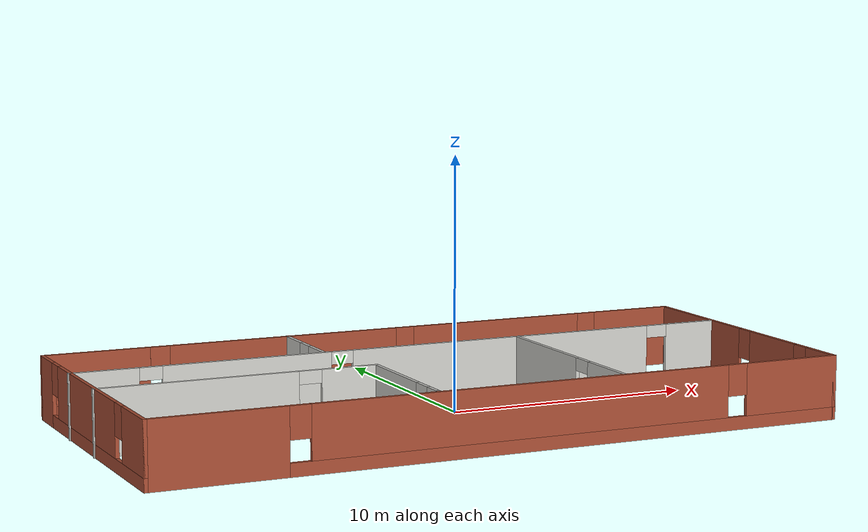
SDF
<?xml version='1.0'?>
<sdf version='1.7'>
  <model name='house'>
    <pose>-1.19393 -0.970979 0 0 -0 0</pose>
    <link name='Wall_0'>
      <pose>-13.6524 -0.015263 0 0 -0 -1.5708</pose>
      <visual name='Wall_0_Visual_0'>
        <pose>-5.57159 0 1.25 0 -0 0</pose>
        <geometry>
          <box>
            <size>1.60682 0.15 2.5</size>
          </box>
        </geometry>
        <material>
          <script>
            <uri>file://media/materials/scripts/gazebo.material</uri>
            <name>Gazebo/Bricks</name>
          </script>
          <ambient>0.760784 0.662745 0.627451 1</ambient>
        </material>
        <meta>
          <layer>0</layer>
        </meta>
      </visual>
      <collision name='Wall_0_Collision_0'>
        <geometry>
          <box>
            <size>1.60682 0.15 2.5</size>
          </box>
        </geometry>
        <pose>-5.57159 0 1.25 0 -0 0</pose>
      </collision>
      <visual name='Wall_0_Visual_1'>
        <pose>0.803408 0 0.25 0 -0 0</pose>
        <geometry>
          <box>
            <size>11.1432 0.15 0.5</size>
          </box>
        </geometry>
        <material>
          <script>
            <uri>file://media/materials/scripts/gazebo.material</uri>
            <name>Gazebo/Bricks</name>
          </script>
          <ambient>0.760784 0.662745 0.627451 1</ambient>
        </material>
        <meta>
          <layer>0</layer>
        </meta>
      </visual>
      <collision name='Wall_0_Collision_1'>
        <geometry>
          <box>
            <size>11.1432 0.15 0.5</size>
          </box>
        </geometry>
        <pose>0.803408 0 0.25 0 -0 0</pose>
      </collision>
      <visual name='Wall_0_Visual_2'>
        <pose>-0.39039 0 1.5 0 -0 0</pose>
        <geometry>
          <box>
            <size>7.15559 0.15 2</size>
          </box>
        </geometry>
        <material>
          <script>
            <uri>file://media/materials/scripts/gazebo.material</uri>
            <name>Gazebo/Bricks</name>
          </script>
          <ambient>0.760784 0.662745 0.627451 1</ambient>
        </material>
        <meta>
          <layer>0</layer>
        </meta>
      </visual>
      <collision name='Wall_0_Collision_2'>
        <geometry>
          <box>
            <size>7.15559 0.15 2</size>
          </box>
        </geometry>
        <pose>-0.39039 0 1.5 0 -0 0</pose>
      </collision>
      <visual name='Wall_0_Visual_3'>
        <pose>5.1812 0 1.5 0 -0 0</pose>
        <geometry>
          <box>
            <size>2.3876 0.15 2</size>
          </box>
        </geometry>
        <material>
          <script>
            <uri>file://media/materials/scripts/gazebo.material</uri>
            <name>Gazebo/Bricks</name>
          </script>
          <ambient>0.760784 0.662745 0.627451 1</ambient>
        </material>
        <meta>
          <layer>0</layer>
        </meta>
      </visual>
      <collision name='Wall_0_Collision_3'>
        <geometry>
          <box>
            <size>2.3876 0.15 2</size>
          </box>
        </geometry>
        <pose>5.1812 0 1.5 0 -0 0</pose>
      </collision>
      <visual name='Wall_0_Visual_4'>
        <pose>-4.36819 0 1.9 0 -0 0</pose>
        <geometry>
          <box>
            <size>0.8 0.15 1.2</size>
          </box>
        </geometry>
        <material>
          <script>
            <uri>file://media/materials/scripts/gazebo.material</uri>
            <name>Gazebo/Bricks</name>
          </script>
          <ambient>0.760784 0.662745 0.627451 1</ambient>
        </material>
        <meta>
          <layer>0</layer>
        </meta>
      </visual>
      <collision name='Wall_0_Collision_4'>
        <geometry>
          <box>
            <size>0.8 0.15 1.2</size>
          </box>
        </geometry>
        <pose>-4.36819 0 1.9 0 -0 0</pose>
      </collision>
      <visual name='Wall_0_Visual_5'>
        <pose>3.5874 0 1.9 0 -0 0</pose>
        <geometry>
          <box>
            <size>0.8 0.15 1.2</size>
          </box>
        </geometry>
        <material>
          <script>
            <uri>file://media/materials/scripts/gazebo.material</uri>
            <name>Gazebo/Bricks</name>
          </script>
          <ambient>0.760784 0.662745 0.627451 1</ambient>
        </material>
        <meta>
          <layer>0</layer>
        </meta>
      </visual>
      <collision name='Wall_0_Collision_5'>
        <geometry>
          <box>
            <size>0.8 0.15 1.2</size>
          </box>
        </geometry>
        <pose>3.5874 0 1.9 0 -0 0</pose>
      </collision>
    </link>
    <link name='Wall_1'>
      <pose>0.022599 -6.31526 0 0 -0 0</pose>
      <visual name='Wall_1_Visual_0'>
        <pose>-11.1466 0 1.25 0 -0 0</pose>
        <geometry>
          <box>
            <size>5.20681 0.15 2.5</size>
          </box>
        </geometry>
        <material>
          <script>
            <uri>file://media/materials/scripts/gazebo.material</uri>
            <name>Gazebo/Bricks</name>
          </script>
          <ambient>0.760784 0.662745 0.627451 1</ambient>
        </material>
        <meta>
          <layer>0</layer>
        </meta>
      </visual>
      <collision name='Wall_1_Collision_0'>
        <geometry>
          <box>
            <size>5.20681 0.15 2.5</size>
          </box>
        </geometry>
        <pose>-11.1466 0 1.25 0 -0 0</pose>
      </collision>
      <visual name='Wall_1_Visual_1'>
        <pose>2.60341 0 0.25 0 -0 0</pose>
        <geometry>
          <box>
            <size>22.2932 0.15 0.5</size>
          </box>
        </geometry>
        <material>
          <script>
            <uri>file://media/materials/scripts/gazebo.material</uri>
            <name>Gazebo/Bricks</name>
          </script>
          <ambient>0.760784 0.662745 0.627451 1</ambient>
        </material>
        <meta>
          <layer>0</layer>
        </meta>
      </visual>
      <collision name='Wall_1_Collision_1'>
        <geometry>
          <box>
            <size>22.2932 0.15 0.5</size>
          </box>
        </geometry>
        <pose>2.60341 0 0.25 0 -0 0</pose>
      </collision>
      <visual name='Wall_1_Visual_2'>
        <pose>0.603307 0 1.5 0 -0 0</pose>
        <geometry>
          <box>
            <size>16.693 0.15 2</size>
          </box>
        </geometry>
        <material>
          <script>
            <uri>file://media/materials/scripts/gazebo.material</uri>
            <name>Gazebo/Bricks</name>
          </script>
          <ambient>0.760784 0.662745 0.627451 1</ambient>
        </material>
        <meta>
          <layer>0</layer>
        </meta>
      </visual>
      <collision name='Wall_1_Collision_2'>
        <geometry>
          <box>
            <size>16.693 0.15 2</size>
          </box>
        </geometry>
        <pose>0.603307 0 1.5 0 -0 0</pose>
      </collision>
      <visual name='Wall_1_Visual_3'>
        <pose>11.7499 0 1.5 0 -0 0</pose>
        <geometry>
          <box>
            <size>4.0002 0.15 2</size>
          </box>
        </geometry>
        <material>
          <script>
            <uri>file://media/materials/scripts/gazebo.material</uri>
            <name>Gazebo/Bricks</name>
          </script>
          <ambient>0.760784 0.662745 0.627451 1</ambient>
        </material>
        <meta>
          <layer>0</layer>
        </meta>
      </visual>
      <collision name='Wall_1_Collision_3'>
        <geometry>
          <box>
            <size>4.0002 0.15 2</size>
          </box>
        </geometry>
        <pose>11.7499 0 1.5 0 -0 0</pose>
      </collision>
      <visual name='Wall_1_Visual_4'>
        <pose>-8.14319 0 1.9 0 -0 0</pose>
        <geometry>
          <box>
            <size>0.8 0.15 1.2</size>
          </box>
        </geometry>
        <material>
          <script>
            <uri>file://media/materials/scripts/gazebo.material</uri>
            <name>Gazebo/Bricks</name>
          </script>
          <ambient>0.760784 0.662745 0.627451 1</ambient>
        </material>
        <meta>
          <layer>0</layer>
        </meta>
      </visual>
      <collision name='Wall_1_Collision_4'>
        <geometry>
          <box>
            <size>0.8 0.15 1.2</size>
          </box>
        </geometry>
        <pose>-8.14319 0 1.9 0 -0 0</pose>
      </collision>
      <visual name='Wall_1_Visual_5'>
        <pose>9.3498 0 1.9 0 -0 0</pose>
        <geometry>
          <box>
            <size>0.8 0.15 1.2</size>
          </box>
        </geometry>
        <material>
          <script>
            <uri>file://media/materials/scripts/gazebo.material</uri>
            <name>Gazebo/Bricks</name>
          </script>
          <ambient>0.760784 0.662745 0.627451 1</ambient>
        </material>
        <meta>
          <layer>0</layer>
        </meta>
      </visual>
      <collision name='Wall_1_Collision_5'>
        <geometry>
          <box>
            <size>0.8 0.15 1.2</size>
          </box>
        </geometry>
        <pose>9.3498 0 1.9 0 -0 0</pose>
      </collision>
    </link>
    <link name='Wall_10'>
      <pose>-2.8476 -3.39165 0 0 -0 -1.5708</pose>
      <visual name='Wall_10_Visual_0'>
        <pose>-0.843155 0 1.25 0 -0 0</pose>
        <geometry>
          <box>
            <size>3.81369 0.15 2.5</size>
          </box>
        </geometry>
        <material>
          <script>
            <uri>file://media/materials/scripts/gazebo.material</uri>
            <name>Gazebo/CeilingTiled</name>
          </script>
          <ambient>1 1 1 1</ambient>
        </material>
        <meta>
          <layer>0</layer>
        </meta>
      </visual>
      <collision name='Wall_10_Collision_0'>
        <geometry>
          <box>
            <size>3.81369 0.15 2.5</size>
          </box>
        </geometry>
        <pose>-0.843155 0 1.25 0 -0 0</pose>
      </collision>
      <visual name='Wall_10_Visual_1'>
        <pose>2.35684 0 1.25 0 -0 0</pose>
        <geometry>
          <box>
            <size>0.786311 0.15 2.5</size>
          </box>
        </geometry>
        <material>
          <script>
            <uri>file://media/materials/scripts/gazebo.material</uri>
            <name>Gazebo/CeilingTiled</name>
          </script>
          <ambient>1 1 1 1</ambient>
        </material>
        <meta>
          <layer>0</layer>
        </meta>
      </visual>
      <collision name='Wall_10_Collision_1'>
        <geometry>
          <box>
            <size>0.786311 0.15 2.5</size>
          </box>
        </geometry>
        <pose>2.35684 0 1.25 0 -0 0</pose>
      </collision>
      <visual name='Wall_10_Visual_2'>
        <pose>1.51369 0 2.25 0 -0 0</pose>
        <geometry>
          <box>
            <size>0.9 0.15 0.5</size>
          </box>
        </geometry>
        <material>
          <script>
            <uri>file://media/materials/scripts/gazebo.material</uri>
            <name>Gazebo/CeilingTiled</name>
          </script>
          <ambient>1 1 1 1</ambient>
        </material>
        <meta>
          <layer>0</layer>
        </meta>
      </visual>
      <collision name='Wall_10_Collision_2'>
        <geometry>
          <box>
            <size>0.9 0.15 0.5</size>
          </box>
        </geometry>
        <pose>1.51369 0 2.25 0 -0 0</pose>
      </collision>
    </link>
    <link name='Wall_12'>
      <collision name='Wall_12_Collision'>
        <geometry>
          <box>
            <size>0.25 0.15 2.5</size>
          </box>
        </geometry>
        <pose>0 0 1.25 0 -0 0</pose>
      </collision>
      <visual name='Wall_12_Visual'>
        <pose>0 0 1.25 0 -0 0</pose>
        <geometry>
          <box>
            <size>0.25 0.15 2.5</size>
          </box>
        </geometry>
        <material>
          <script>
            <uri>file://media/materials/scripts/gazebo.material</uri>
            <name>Gazebo/Grey</name>
          </script>
          <ambient>1 1 1 1</ambient>
        </material>
        <meta>
          <layer>0</layer>
        </meta>
      </visual>
      <pose>-2.8476 -6.11665 0 0 -0 -1.5708</pose>
    </link>
    <link name='Wall_15'>
      <pose>4.61909 -1.88237 0 0 -0 -1.5708</pose>
      <visual name='Wall_15_Visual_0'>
        <pose>-1.80823 0 1.25 0 -0 0</pose>
        <geometry>
          <box>
            <size>5.13354 0.15 2.5</size>
          </box>
        </geometry>
        <material>
          <script>
            <uri>file://media/materials/scripts/gazebo.material</uri>
            <name>Gazebo/CeilingTiled</name>
          </script>
          <ambient>1 1 1 1</ambient>
        </material>
        <meta>
          <layer>0</layer>
        </meta>
      </visual>
      <collision name='Wall_15_Collision_0'>
        <geometry>
          <box>
            <size>5.13354 0.15 2.5</size>
          </box>
        </geometry>
        <pose>-1.80823 0 1.25 0 -0 0</pose>
      </collision>
      <visual name='Wall_15_Visual_1'>
        <pose>3.01677 0 1.25 0 -0 0</pose>
        <geometry>
          <box>
            <size>2.71646 0.15 2.5</size>
          </box>
        </geometry>
        <material>
          <script>
            <uri>file://media/materials/scripts/gazebo.material</uri>
            <name>Gazebo/CeilingTiled</name>
          </script>
          <ambient>1 1 1 1</ambient>
        </material>
        <meta>
          <layer>0</layer>
        </meta>
      </visual>
      <collision name='Wall_15_Collision_1'>
        <geometry>
          <box>
            <size>2.71646 0.15 2.5</size>
          </box>
        </geometry>
        <pose>3.01677 0 1.25 0 -0 0</pose>
      </collision>
      <visual name='Wall_15_Visual_2'>
        <pose>1.20854 0 2.25 0 -0 0</pose>
        <geometry>
          <box>
            <size>0.9 0.15 0.5</size>
          </box>
        </geometry>
        <material>
          <script>
            <uri>file://media/materials/scripts/gazebo.material</uri>
            <name>Gazebo/CeilingTiled</name>
          </script>
          <ambient>1 1 1 1</ambient>
        </material>
        <meta>
          <layer>0</layer>
        </meta>
      </visual>
      <collision name='Wall_15_Collision_2'>
        <geometry>
          <box>
            <size>0.9 0.15 0.5</size>
          </box>
        </geometry>
        <pose>1.20854 0 2.25 0 -0 0</pose>
      </collision>
    </link>
    <link name='Wall_2'>
      <pose>13.6976 -0.015263 0 0 -0 1.5708</pose>
      <visual name='Wall_2_Visual_0'>
        <pose>-5.43708 0 1.25 0 -0 0</pose>
        <geometry>
          <box>
            <size>1.87583 0.15 2.5</size>
          </box>
        </geometry>
        <material>
          <script>
            <uri>file://media/materials/scripts/gazebo.material</uri>
            <name>Gazebo/Bricks</name>
          </script>
          <ambient>1 1 1 1</ambient>
        </material>
        <meta>
          <layer>0</layer>
        </meta>
      </visual>
      <collision name='Wall_2_Collision_0'>
        <geometry>
          <box>
            <size>1.87583 0.15 2.5</size>
          </box>
        </geometry>
        <pose>-5.43708 0 1.25 0 -0 0</pose>
      </collision>
      <visual name='Wall_2_Visual_1'>
        <pose>0.937916 0 0.25 0 -0 0</pose>
        <geometry>
          <box>
            <size>10.8742 0.15 0.5</size>
          </box>
        </geometry>
        <material>
          <script>
            <uri>file://media/materials/scripts/gazebo.material</uri>
            <name>Gazebo/Bricks</name>
          </script>
          <ambient>1 1 1 1</ambient>
        </material>
        <meta>
          <layer>0</layer>
        </meta>
      </visual>
      <collision name='Wall_2_Collision_1'>
        <geometry>
          <box>
            <size>10.8742 0.15 0.5</size>
          </box>
        </geometry>
        <pose>0.937916 0 0.25 0 -0 0</pose>
      </collision>
      <visual name='Wall_2_Visual_2'>
        <pose>-2.1219 0 1.5 0 -0 0</pose>
        <geometry>
          <box>
            <size>3.15453 0.15 2</size>
          </box>
        </geometry>
        <material>
          <script>
            <uri>file://media/materials/scripts/gazebo.material</uri>
            <name>Gazebo/Bricks</name>
          </script>
          <ambient>1 1 1 1</ambient>
        </material>
        <meta>
          <layer>0</layer>
        </meta>
      </visual>
      <collision name='Wall_2_Collision_2'>
        <geometry>
          <box>
            <size>3.15453 0.15 2</size>
          </box>
        </geometry>
        <pose>-2.1219 0 1.5 0 -0 0</pose>
      </collision>
      <visual name='Wall_2_Visual_3'>
        <pose>3.31518 0 1.5 0 -0 0</pose>
        <geometry>
          <box>
            <size>6.11963 0.15 2</size>
          </box>
        </geometry>
        <material>
          <script>
            <uri>file://media/materials/scripts/gazebo.material</uri>
            <name>Gazebo/Bricks</name>
          </script>
          <ambient>1 1 1 1</ambient>
        </material>
        <meta>
          <layer>0</layer>
        </meta>
      </visual>
      <collision name='Wall_2_Collision_3'>
        <geometry>
          <box>
            <size>6.11963 0.15 2</size>
          </box>
        </geometry>
        <pose>3.31518 0 1.5 0 -0 0</pose>
      </collision>
      <visual name='Wall_2_Visual_4'>
        <pose>-4.09917 0 1.9 0 -0 0</pose>
        <geometry>
          <box>
            <size>0.8 0.15 1.2</size>
          </box>
        </geometry>
        <material>
          <script>
            <uri>file://media/materials/scripts/gazebo.material</uri>
            <name>Gazebo/Bricks</name>
          </script>
          <ambient>1 1 1 1</ambient>
        </material>
        <meta>
          <layer>0</layer>
        </meta>
      </visual>
      <collision name='Wall_2_Collision_4'>
        <geometry>
          <box>
            <size>0.8 0.15 1.2</size>
          </box>
        </geometry>
        <pose>-4.09917 0 1.9 0 -0 0</pose>
      </collision>
      <visual name='Wall_2_Visual_5'>
        <pose>-0.144635 0 1.9 0 -0 0</pose>
        <geometry>
          <box>
            <size>0.8 0.15 1.2</size>
          </box>
        </geometry>
        <material>
          <script>
            <uri>file://media/materials/scripts/gazebo.material</uri>
            <name>Gazebo/Bricks</name>
          </script>
          <ambient>1 1 1 1</ambient>
        </material>
        <meta>
          <layer>0</layer>
        </meta>
      </visual>
      <collision name='Wall_2_Collision_5'>
        <geometry>
          <box>
            <size>0.8 0.15 1.2</size>
          </box>
        </geometry>
        <pose>-0.144635 0 1.9 0 -0 0</pose>
      </collision>
    </link>
    <link name='Wall_3'>
      <pose>0.022599 6.28474 0 0 -0 3.14159</pose>
      <visual name='Wall_3_Visual_0'>
        <pose>-11.9593 0 1.25 0 -0 0</pose>
        <geometry>
          <box>
            <size>3.58148 0.15 2.5</size>
          </box>
        </geometry>
        <material>
          <script>
            <uri>file://media/materials/scripts/gazebo.material</uri>
            <name>Gazebo/Bricks</name>
          </script>
          <ambient>1 1 1 1</ambient>
        </material>
        <meta>
          <layer>0</layer>
        </meta>
      </visual>
      <collision name='Wall_3_Collision_0'>
        <geometry>
          <box>
            <size>3.58148 0.15 2.5</size>
          </box>
        </geometry>
        <pose>-11.9593 0 1.25 0 -0 0</pose>
      </collision>
      <visual name='Wall_3_Visual_1'>
        <pose>1.79074 0 0.25 0 -0 0</pose>
        <geometry>
          <box>
            <size>23.9185 0.15 0.5</size>
          </box>
        </geometry>
        <material>
          <script>
            <uri>file://media/materials/scripts/gazebo.material</uri>
            <name>Gazebo/Bricks</name>
          </script>
          <ambient>1 1 1 1</ambient>
        </material>
        <meta>
          <layer>0</layer>
        </meta>
      </visual>
      <collision name='Wall_3_Collision_1'>
        <geometry>
          <box>
            <size>23.9185 0.15 0.5</size>
          </box>
        </geometry>
        <pose>1.79074 0 0.25 0 -0 0</pose>
      </collision>
      <visual name='Wall_3_Visual_2'>
        <pose>-5.58137 0 1.5 0 -0 0</pose>
        <geometry>
          <box>
            <size>7.5743 0.15 2</size>
          </box>
        </geometry>
        <material>
          <script>
            <uri>file://media/materials/scripts/gazebo.material</uri>
            <name>Gazebo/Bricks</name>
          </script>
          <ambient>1 1 1 1</ambient>
        </material>
        <meta>
          <layer>0</layer>
        </meta>
      </visual>
      <collision name='Wall_3_Collision_2'>
        <geometry>
          <box>
            <size>7.5743 0.15 2</size>
          </box>
        </geometry>
        <pose>-5.58137 0 1.5 0 -0 0</pose>
      </collision>
      <visual name='Wall_3_Visual_3'>
        <pose>3.81646 0 1.5 0 -0 0</pose>
        <geometry>
          <box>
            <size>9.62136 0.15 2</size>
          </box>
        </geometry>
        <material>
          <script>
            <uri>file://media/materials/scripts/gazebo.material</uri>
            <name>Gazebo/Bricks</name>
          </script>
          <ambient>1 1 1 1</ambient>
        </material>
        <meta>
          <layer>0</layer>
        </meta>
      </visual>
      <collision name='Wall_3_Collision_3'>
        <geometry>
          <box>
            <size>9.62136 0.15 2</size>
          </box>
        </geometry>
        <pose>3.81646 0 1.5 0 -0 0</pose>
      </collision>
      <visual name='Wall_3_Visual_4'>
        <pose>11.5886 0 1.5 0 -0 0</pose>
        <geometry>
          <box>
            <size>4.32286 0.15 2</size>
          </box>
        </geometry>
        <material>
          <script>
            <uri>file://media/materials/scripts/gazebo.material</uri>
            <name>Gazebo/Bricks</name>
          </script>
          <ambient>1 1 1 1</ambient>
        </material>
        <meta>
          <layer>0</layer>
        </meta>
      </visual>
      <collision name='Wall_3_Collision_4'>
        <geometry>
          <box>
            <size>4.32286 0.15 2</size>
          </box>
        </geometry>
        <pose>11.5886 0 1.5 0 -0 0</pose>
      </collision>
      <visual name='Wall_3_Visual_5'>
        <pose>-9.76852 0 1.9 0 -0 0</pose>
        <geometry>
          <box>
            <size>0.8 0.15 1.2</size>
          </box>
        </geometry>
        <material>
          <script>
            <uri>file://media/materials/scripts/gazebo.material</uri>
            <name>Gazebo/Bricks</name>
          </script>
          <ambient>1 1 1 1</ambient>
        </material>
        <meta>
          <layer>0</layer>
        </meta>
      </visual>
      <collision name='Wall_3_Collision_5'>
        <geometry>
          <box>
            <size>0.8 0.15 1.2</size>
          </box>
        </geometry>
        <pose>-9.76852 0 1.9 0 -0 0</pose>
      </collision>
      <visual name='Wall_3_Visual_6'>
        <pose>-1.39421 0 1.9 0 -0 0</pose>
        <geometry>
          <box>
            <size>0.8 0.15 1.2</size>
          </box>
        </geometry>
        <material>
          <script>
            <uri>file://media/materials/scripts/gazebo.material</uri>
            <name>Gazebo/Bricks</name>
          </script>
          <ambient>1 1 1 1</ambient>
        </material>
        <meta>
          <layer>0</layer>
        </meta>
      </visual>
      <collision name='Wall_3_Collision_6'>
        <geometry>
          <box>
            <size>0.8 0.15 1.2</size>
          </box>
        </geometry>
        <pose>-1.39421 0 1.9 0 -0 0</pose>
      </collision>
      <visual name='Wall_3_Visual_7'>
        <pose>9.02714 0 1.9 0 -0 0</pose>
        <geometry>
          <box>
            <size>0.8 0.15 1.2</size>
          </box>
        </geometry>
        <material>
          <script>
            <uri>file://media/materials/scripts/gazebo.material</uri>
            <name>Gazebo/Bricks</name>
          </script>
          <ambient>1 1 1 1</ambient>
        </material>
        <meta>
          <layer>0</layer>
        </meta>
      </visual>
      <collision name='Wall_3_Collision_7'>
        <geometry>
          <box>
            <size>0.8 0.15 1.2</size>
          </box>
        </geometry>
        <pose>9.02714 0 1.9 0 -0 0</pose>
      </collision>
    </link>
    <link name='Wall_5'>
      <pose>-0.022438 2.41034 0 0 -0 0</pose>
      <visual name='Wall_5_Visual_0'>
        <pose>-12.4031 0 1.25 0 -0 0</pose>
        <geometry>
          <box>
            <size>2.6938 0.15 2.5</size>
          </box>
        </geometry>
        <material>
          <script>
            <uri>file://media/materials/scripts/gazebo.material</uri>
            <name>Gazebo/CeilingTiled</name>
          </script>
          <ambient>1 1 1 1</ambient>
        </material>
        <meta>
          <layer>0</layer>
        </meta>
      </visual>
      <collision name='Wall_5_Collision_0'>
        <geometry>
          <box>
            <size>2.6938 0.15 2.5</size>
          </box>
        </geometry>
        <pose>-12.4031 0 1.25 0 -0 0</pose>
      </collision>
      <visual name='Wall_5_Visual_1'>
        <pose>-6.77171 0 1.25 0 -0 0</pose>
        <geometry>
          <box>
            <size>6.76897 0.15 2.5</size>
          </box>
        </geometry>
        <material>
          <script>
            <uri>file://media/materials/scripts/gazebo.material</uri>
            <name>Gazebo/CeilingTiled</name>
          </script>
          <ambient>1 1 1 1</ambient>
        </material>
        <meta>
          <layer>0</layer>
        </meta>
      </visual>
      <collision name='Wall_5_Collision_1'>
        <geometry>
          <box>
            <size>6.76897 0.15 2.5</size>
          </box>
        </geometry>
        <pose>-6.77171 0 1.25 0 -0 0</pose>
      </collision>
      <visual name='Wall_5_Visual_2'>
        <pose>4.02817 0 1.25 0 -0 0</pose>
        <geometry>
          <box>
            <size>13.0308 0.15 2.5</size>
          </box>
        </geometry>
        <material>
          <script>
            <uri>file://media/materials/scripts/gazebo.material</uri>
            <name>Gazebo/CeilingTiled</name>
          </script>
          <ambient>1 1 1 1</ambient>
        </material>
        <meta>
          <layer>0</layer>
        </meta>
      </visual>
      <collision name='Wall_5_Collision_2'>
        <geometry>
          <box>
            <size>13.0308 0.15 2.5</size>
          </box>
        </geometry>
        <pose>4.02817 0 1.25 0 -0 0</pose>
      </collision>
      <visual name='Wall_5_Visual_3'>
        <pose>12.5968 0 1.25 0 -0 0</pose>
        <geometry>
          <box>
            <size>2.30644 0.15 2.5</size>
          </box>
        </geometry>
        <material>
          <script>
            <uri>file://media/materials/scripts/gazebo.material</uri>
            <name>Gazebo/CeilingTiled</name>
          </script>
          <ambient>1 1 1 1</ambient>
        </material>
        <meta>
          <layer>0</layer>
        </meta>
      </visual>
      <collision name='Wall_5_Collision_3'>
        <geometry>
          <box>
            <size>2.30644 0.15 2.5</size>
          </box>
        </geometry>
        <pose>12.5968 0 1.25 0 -0 0</pose>
      </collision>
      <visual name='Wall_5_Visual_4'>
        <pose>-10.6062 0 2.25 0 -0 0</pose>
        <geometry>
          <box>
            <size>0.9 0.15 0.5</size>
          </box>
        </geometry>
        <material>
          <script>
            <uri>file://media/materials/scripts/gazebo.material</uri>
            <name>Gazebo/CeilingTiled</name>
          </script>
          <ambient>1 1 1 1</ambient>
        </material>
        <meta>
          <layer>0</layer>
        </meta>
      </visual>
      <collision name='Wall_5_Collision_4'>
        <geometry>
          <box>
            <size>0.9 0.15 0.5</size>
          </box>
        </geometry>
        <pose>-10.6062 0 2.25 0 -0 0</pose>
      </collision>
      <visual name='Wall_5_Visual_5'>
        <pose>-2.93723 0 2.25 0 -0 0</pose>
        <geometry>
          <box>
            <size>0.9 0.15 0.5</size>
          </box>
        </geometry>
        <material>
          <script>
            <uri>file://media/materials/scripts/gazebo.material</uri>
            <name>Gazebo/CeilingTiled</name>
          </script>
          <ambient>1 1 1 1</ambient>
        </material>
        <meta>
          <layer>0</layer>
        </meta>
      </visual>
      <collision name='Wall_5_Collision_5'>
        <geometry>
          <box>
            <size>0.9 0.15 0.5</size>
          </box>
        </geometry>
        <pose>-2.93723 0 2.25 0 -0 0</pose>
      </collision>
      <visual name='Wall_5_Visual_6'>
        <pose>10.9936 0 2.25 0 -0 0</pose>
        <geometry>
          <box>
            <size>0.9 0.15 0.5</size>
          </box>
        </geometry>
        <material>
          <script>
            <uri>file://media/materials/scripts/gazebo.material</uri>
            <name>Gazebo/CeilingTiled</name>
          </script>
          <ambient>1 1 1 1</ambient>
        </material>
        <meta>
          <layer>0</layer>
        </meta>
      </visual>
      <collision name='Wall_5_Collision_6'>
        <geometry>
          <box>
            <size>0.9 0.15 0.5</size>
          </box>
        </geometry>
        <pose>10.9936 0 2.25 0 -0 0</pose>
      </collision>
    </link>
    <link name='Wall_7'>
      <pose>-3.66474 4.39026 0 0 -0 -1.5708</pose>
      <visual name='Wall_7_Visual_0'>
        <pose>-1.20498 0 1.25 0 -0 0</pose>
        <geometry>
          <box>
            <size>1.59004 0.15 2.5</size>
          </box>
        </geometry>
        <material>
          <script>
            <uri>file://media/materials/scripts/gazebo.material</uri>
            <name>Gazebo/CeilingTiled</name>
          </script>
          <ambient>1 1 1 1</ambient>
        </material>
        <meta>
          <layer>0</layer>
        </meta>
      </visual>
      <collision name='Wall_7_Collision_0'>
        <geometry>
          <box>
            <size>1.59004 0.15 2.5</size>
          </box>
        </geometry>
        <pose>-1.20498 0 1.25 0 -0 0</pose>
      </collision>
      <visual name='Wall_7_Visual_1'>
        <pose>1.24502 0 1.25 0 -0 0</pose>
        <geometry>
          <box>
            <size>1.50996 0.15 2.5</size>
          </box>
        </geometry>
        <material>
          <script>
            <uri>file://media/materials/scripts/gazebo.material</uri>
            <name>Gazebo/CeilingTiled</name>
          </script>
          <ambient>1 1 1 1</ambient>
        </material>
        <meta>
          <layer>0</layer>
        </meta>
      </visual>
      <collision name='Wall_7_Collision_1'>
        <geometry>
          <box>
            <size>1.50996 0.15 2.5</size>
          </box>
        </geometry>
        <pose>1.24502 0 1.25 0 -0 0</pose>
      </collision>
      <visual name='Wall_7_Visual_2'>
        <pose>0.040039 0 2.25 0 -0 0</pose>
        <geometry>
          <box>
            <size>0.9 0.15 0.5</size>
          </box>
        </geometry>
        <material>
          <script>
            <uri>file://media/materials/scripts/gazebo.material</uri>
            <name>Gazebo/CeilingTiled</name>
          </script>
          <ambient>1 1 1 1</ambient>
        </material>
        <meta>
          <layer>0</layer>
        </meta>
      </visual>
      <collision name='Wall_7_Collision_2'>
        <geometry>
          <box>
            <size>0.9 0.15 0.5</size>
          </box>
        </geometry>
        <pose>0.040039 0 2.25 0 -0 0</pose>
      </collision>
    </link>
    <link name='Wall_9'>
      <pose>-8.2726 -0.716648 0 0 -0 0</pose>
      <visual name='Wall_9_Visual_0'>
        <pose>-1.59633 0 1.25 0 -0 0</pose>
        <geometry>
          <box>
            <size>7.80735 0.15 2.5</size>
          </box>
        </geometry>
        <material>
          <script>
            <uri>file://media/materials/scripts/gazebo.material</uri>
            <name>Gazebo/CeilingTiled</name>
          </script>
          <ambient>1 1 1 1</ambient>
        </material>
        <meta>
          <layer>0</layer>
        </meta>
      </visual>
      <collision name='Wall_9_Collision_0'>
        <geometry>
          <box>
            <size>7.80735 0.15 2.5</size>
          </box>
        </geometry>
        <pose>-1.59633 0 1.25 0 -0 0</pose>
      </collision>
      <visual name='Wall_9_Visual_1'>
        <pose>4.35367 0 1.25 0 -0 0</pose>
        <geometry>
          <box>
            <size>2.29265 0.15 2.5</size>
          </box>
        </geometry>
        <material>
          <script>
            <uri>file://media/materials/scripts/gazebo.material</uri>
            <name>Gazebo/CeilingTiled</name>
          </script>
          <ambient>1 1 1 1</ambient>
        </material>
        <meta>
          <layer>0</layer>
        </meta>
      </visual>
      <collision name='Wall_9_Collision_1'>
        <geometry>
          <box>
            <size>2.29265 0.15 2.5</size>
          </box>
        </geometry>
        <pose>4.35367 0 1.25 0 -0 0</pose>
      </collision>
      <visual name='Wall_9_Visual_2'>
        <pose>2.75735 0 2.25 0 -0 0</pose>
        <geometry>
          <box>
            <size>0.9 0.15 0.5</size>
          </box>
        </geometry>
        <material>
          <script>
            <uri>file://media/materials/scripts/gazebo.material</uri>
            <name>Gazebo/CeilingTiled</name>
          </script>
          <ambient>1 1 1 1</ambient>
        </material>
        <meta>
          <layer>0</layer>
        </meta>
      </visual>
      <collision name='Wall_9_Collision_2'>
        <geometry>
          <box>
            <size>0.9 0.15 0.5</size>
          </box>
        </geometry>
        <pose>2.75735 0 2.25 0 -0 0</pose>
      </collision>
    </link>
    <static>1</static>
  </model>
</sdf>
